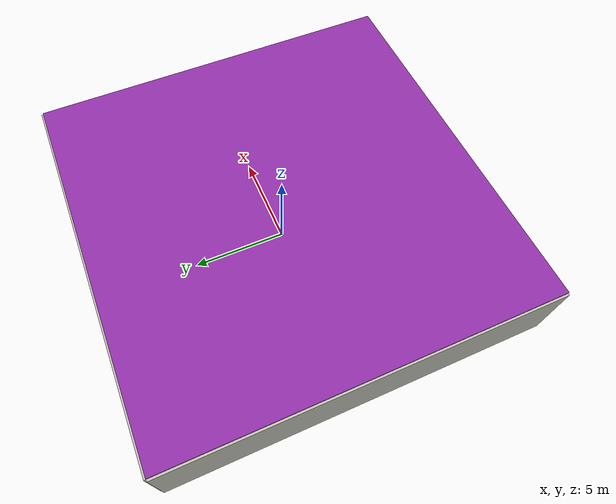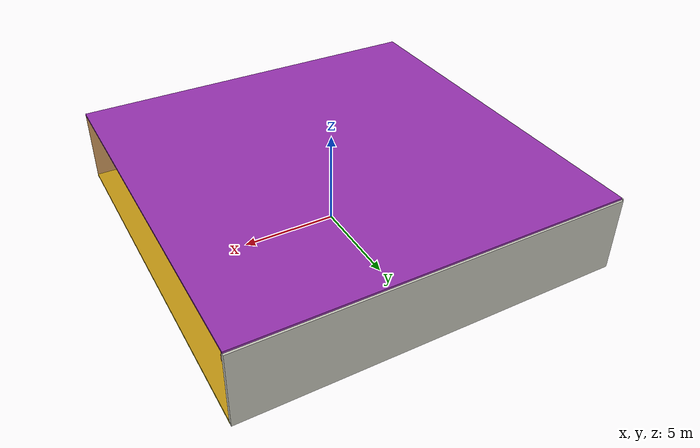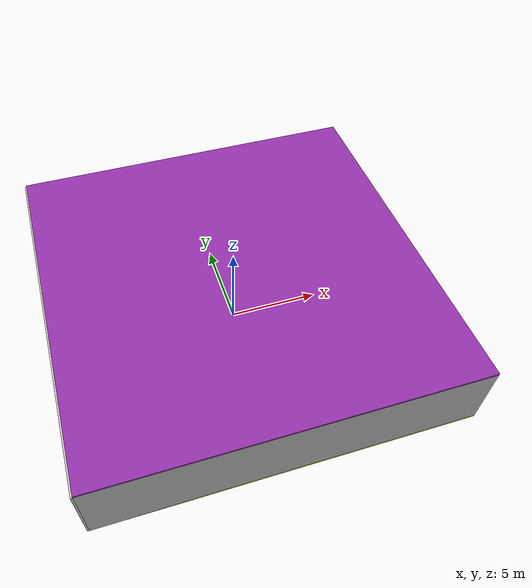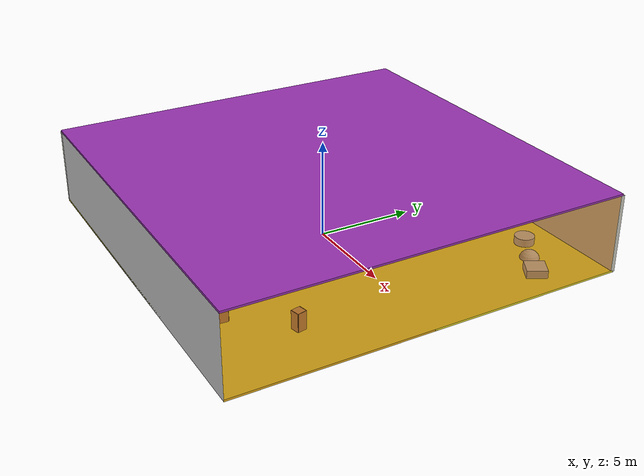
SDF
<sdf version="1.4">
 <world name="default">
  <physics type="ode">
   <max_step_size>0.001</max_step_size>
   <real_time_factor>1</real_time_factor>
   <real_time_update_rate>1000</real_time_update_rate>
   <gravity>0 0 -9.8</gravity>
  </physics>
  <scene><ambient>0.4 0.4 0.4 1</ambient><background>0.7 0.7 0.7 1</background><shadows>1</shadows></scene>
  <model name="Surrounding">
   <static>1</static>
   <link name="Ceiling">
    <collision name="Ceiling_Collision"><geometry><box><size>20 20 0.1</size></box></geometry></collision>
    <visual name="Ceiling_Visual">
     <geometry><box><size>20 20 0.1</size></box></geometry>
     <material>
      <script><uri>file://media/materials/scripts/gazebo.material</uri><name>Gazebo/Purple</name></script>
     </material>
    </visual>
    <pose>0 0 4.05 0 0 0</pose>
   </link>
   <link name="Wall_South">
    <collision name="Wall_South_Collision">
     <geometry><box><size>20 0 4</size></box></geometry>
     <pose>0 0 2 0 -0 0</pose>
    </collision>
    <visual name="Wall_South_Visual">
     <pose>0 0 2 0 -0 0</pose>
     <geometry><box><size>20 0 4</size></box></geometry>
     <material>
      <script><uri>file://media/materials/scripts/gazebo.material</uri><name>Gazebo/LightOff</name></script>
     </material>
    </visual>
    <velocity_decay><linear>0</linear><angular>0</angular></velocity_decay>
    <pose>0 -10 0 0 -0 0</pose>
   </link>
   <link name="Wall_East">
    <collision name="Wall_21_Collision">
     <geometry><box><size>20 0 4</size></box></geometry>
     <pose>0 0 2 0 -0 0</pose>
    </collision>
    <visual name="Wall_21_Visual">
     <pose>0 0 2 0 -0 0</pose>
     <geometry><box><size>20 0 4</size></box></geometry>
     <material>
      <script>
       <uri>file://media/materials/scripts/gazebo.material</uri>
       <name>Gazebo/OrangeTransparent</name>
      </script>
     </material>
    </visual>
    <velocity_decay><linear>0</linear><angular>0</angular></velocity_decay>
    <pose>10 0 0 0 -0 1.5708</pose>
   </link>
   <link name="Wall_North">
    <collision name="Wall_22_Collision">
     <geometry><box><size>20 0.2 4</size></box></geometry>
     <pose>0 0 2 0 -0 0</pose>
    </collision>
    <visual name="Wall_22_Visual">
     <pose>0 0 2 0 -0 0</pose>
     <geometry><box><size>20 0.2 4</size></box></geometry>
     <material>
      <script><uri>file://media/materials/scripts/gazebo.material</uri><name>Gazebo/PaintedWall</name></script>
     </material>
    </visual>
    <velocity_decay><linear>0</linear><angular>0</angular></velocity_decay>
    <pose>0 10 0 0 -0 0</pose>
   </link>
   <link name="Wall_West">
    <collision name="Wall_23_Collision">
     <geometry><box><size>20 0.2 4</size></box></geometry>
     <pose>0 0 2 0 -0 0</pose>
    </collision>
    <visual name="Wall_23_Visual">
     <pose>0 0 2 0 -0 0</pose>
     <geometry><box><size>20 0.2 4</size></box></geometry>
     <material>
      <script><uri>file://media/materials/scripts/gazebo.material</uri><name>Gazebo/PaintedWall</name></script>
     </material>
    </visual>
    <velocity_decay><linear>0</linear><angular>0</angular></velocity_decay>
    <pose>-10 0 0 0 0 -1.5708</pose>
   </link>
   <link name="Ground_link">
    <collision name="collision">
     <pose>0 0 .05 0 -0 0</pose>
     <geometry><box><size>20 20 0.1</size></box></geometry>
    </collision>
    <visual name="visual">
     <pose>0 0 .05 0 -0 0</pose>
     <geometry><box><size>20 20 0.1</size></box></geometry>
     <material>
      <script><uri>file://media/materials/scripts/gazebo.material</uri><name>Gazebo/Yellow</name></script>
     </material>
    </visual>
   </link>
   <static>1</static>
  </model>
  <spherical_coordinates>
   <surface_model>EARTH_WGS84</surface_model>
   <latitude_deg>0</latitude_deg>
   <longitude_deg>0</longitude_deg>
   <elevation>0</elevation>
   <heading_deg>0</heading_deg>
  </spherical_coordinates>
  <light name="lightball_0" type="diffuse">
   <diffuse>0.8 0.8 0.8 1</diffuse>
   <specular>0.2 0.2 0.2 1</specular>
   <attenuation>
    <range>100</range>
    <constant>0.7</constant>
    <linear>0.01</linear>
    <quadratic>0.001</quadratic>
   </attenuation>
   <direction>-0.5 0.1 -0.9</direction>
   <pose>0.333763061241 -3.48272583896 2.34735255595 0 0 0</pose>
  </light>
  <light name="lightball_1" type="diffuse">
   <diffuse>0.8 0.8 0.8 1</diffuse>
   <specular>0.2 0.2 0.2 1</specular>
   <attenuation>
    <range>100</range>
    <constant>0.7</constant>
    <linear>0.01</linear>
    <quadratic>0.001</quadratic>
   </attenuation>
   <direction>-0.5 0.1 -0.9</direction>
   <pose>-0.557156998255 -3.28126322131 0.939511255085 0 0 0</pose>
  </light>
  <light name="lightball_2" type="diffuse">
   <diffuse>0.8 0.8 0.8 1</diffuse>
   <specular>0.2 0.2 0.2 1</specular>
   <attenuation>
    <range>100</range>
    <constant>0.7</constant>
    <linear>0.01</linear>
    <quadratic>0.001</quadratic>
   </attenuation>
   <direction>-0.5 0.1 -0.9</direction>
   <pose>1.14487196342 -3.1599701472 3.79627050303 0 0 0</pose>
  </light>
  <light name="lightball_3" type="diffuse">
   <diffuse>0.8 0.8 0.8 1</diffuse>
   <specular>0.2 0.2 0.2 1</specular>
   <attenuation>
    <range>100</range>
    <constant>0.7</constant>
    <linear>0.01</linear>
    <quadratic>0.001</quadratic>
   </attenuation>
   <direction>-0.5 0.1 -0.9</direction>
   <pose>-2.11480269341 -9.61627451367 2.00042360984 0 0 0</pose>
  </light>
  <light name="lightball_4" type="diffuse">
   <diffuse>0.8 0.8 0.8 1</diffuse>
   <specular>0.2 0.2 0.2 1</specular>
   <attenuation>
    <range>100</range>
    <constant>0.7</constant>
    <linear>0.01</linear>
    <quadratic>0.001</quadratic>
   </attenuation>
   <direction>-0.5 0.1 -0.9</direction>
   <pose>8.72057352152 -6.18556693929 0.616872036116 0 0 0</pose>
  </light>
  <light name="lightball_5" type="diffuse">
   <diffuse>0.8 0.8 0.8 1</diffuse>
   <specular>0.2 0.2 0.2 1</specular>
   <attenuation>
    <range>100</range>
    <constant>0.7</constant>
    <linear>0.01</linear>
    <quadratic>0.001</quadratic>
   </attenuation>
   <direction>-0.5 0.1 -0.9</direction>
   <pose>-9.16171498308 4.83157999174 2.64870129603 0 0 0</pose>
  </light>
  <light name="lightball_6" type="diffuse">
   <diffuse>0.8 0.8 0.8 1</diffuse>
   <specular>0.2 0.2 0.2 1</specular>
   <attenuation>
    <range>100</range>
    <constant>0.7</constant>
    <linear>0.01</linear>
    <quadratic>0.001</quadratic>
   </attenuation>
   <direction>-0.5 0.1 -0.9</direction>
   <pose>3.04818027721 2.88286105007 1.92071685934 0 0 0</pose>
  </light>
  <light name="lightball_7" type="diffuse">
   <diffuse>0.8 0.8 0.8 1</diffuse>
   <specular>0.2 0.2 0.2 1</specular>
   <attenuation>
    <range>100</range>
    <constant>0.7</constant>
    <linear>0.01</linear>
    <quadratic>0.001</quadratic>
   </attenuation>
   <direction>-0.5 0.1 -0.9</direction>
   <pose>3.08264588712 3.75056941584 3.56698280351 0 0 0</pose>
  </light>
  <light name="lightball_8" type="diffuse">
   <diffuse>0.8 0.8 0.8 1</diffuse>
   <specular>0.2 0.2 0.2 1</specular>
   <attenuation>
    <range>100</range>
    <constant>0.7</constant>
    <linear>0.01</linear>
    <quadratic>0.001</quadratic>
   </attenuation>
   <direction>-0.5 0.1 -0.9</direction>
   <pose>6.91823405406 -0.169079947315 1.91948371007 0 0 0</pose>
  </light>
  <light name="lightball_9" type="diffuse">
   <diffuse>0.8 0.8 0.8 1</diffuse>
   <specular>0.2 0.2 0.2 1</specular>
   <attenuation>
    <range>100</range>
    <constant>0.7</constant>
    <linear>0.01</linear>
    <quadratic>0.001</quadratic>
   </attenuation>
   <direction>-0.5 0.1 -0.9</direction>
   <pose>-5.02133811625 -0.316748873498 2.00215127366 0 0 0</pose>
  </light>
  <light name="lightball_10" type="diffuse">
   <diffuse>0.8 0.8 0.8 1</diffuse>
   <specular>0.2 0.2 0.2 1</specular>
   <attenuation>
    <range>100</range>
    <constant>0.7</constant>
    <linear>0.01</linear>
    <quadratic>0.001</quadratic>
   </attenuation>
   <direction>-0.5 0.1 -0.9</direction>
   <pose>-0.867172992167 -2.14863307494 2.89776103621 0 0 0</pose>
  </light>
  <light name="lightball_11" type="diffuse">
   <diffuse>0.8 0.8 0.8 1</diffuse>
   <specular>0.2 0.2 0.2 1</specular>
   <attenuation>
    <range>100</range>
    <constant>0.7</constant>
    <linear>0.01</linear>
    <quadratic>0.001</quadratic>
   </attenuation>
   <direction>-0.5 0.1 -0.9</direction>
   <pose>0.759921460577 8.88664472315 3.57953957371 0 0 0</pose>
  </light>
  <light name="lightball_12" type="diffuse">
   <diffuse>0.8 0.8 0.8 1</diffuse>
   <specular>0.2 0.2 0.2 1</specular>
   <attenuation>
    <range>100</range>
    <constant>0.7</constant>
    <linear>0.01</linear>
    <quadratic>0.001</quadratic>
   </attenuation>
   <direction>-0.5 0.1 -0.9</direction>
   <pose>-5.19673042628 6.82945561686 3.14123340438 0 0 0</pose>
  </light>
  <light name="lightball_13" type="diffuse">
   <diffuse>0.8 0.8 0.8 1</diffuse>
   <specular>0.2 0.2 0.2 1</specular>
   <attenuation>
    <range>100</range>
    <constant>0.7</constant>
    <linear>0.01</linear>
    <quadratic>0.001</quadratic>
   </attenuation>
   <direction>-0.5 0.1 -0.9</direction>
   <pose>-9.18348358032 -8.08530983473 1.65254100385 0 0 0</pose>
  </light>
  <include><uri>model://cabinet</uri><pose>-3.794753865 -7.3618591316 0 0 0 0.441616427835</pose></include>
  <include><uri>model://cabinet</uri><pose>-3.74394623283 -2.28870969083 0 0 0 0.4617106975</pose></include>
  <include><uri>model://cabinet</uri><pose>-5.0595576427 1.42633466763 0 0 0 2.15695195275</pose></include>
  <include><uri>model://cabinet</uri><pose>-1.20405562543 -5.17510040689 0 0 0 2.84946681069</pose></include>
  <include>
   <uri>model://robocup_3Dsim_goal</uri>
   <pose>1.36025161896 -1.74572919379 0 0 0 1.50218860841</pose>
  </include>
  <include><uri>model://cabinet</uri><pose>4.85220423535 -7.74825246968 0 0 0 1.49450897328</pose></include>
  <include><uri>model://cabinet</uri><pose>7.08458849966 -5.16787552125 0 0 0 0.211545848202</pose></include>
  <include>
   <uri>model://textured_shapes</uri>
   <pose>7.12035550816 7.38616440259 0 0 0 1.05354964856</pose>
  </include>
 </world>
</sdf>

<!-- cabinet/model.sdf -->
<sdf version="1.5">
  <model name="cabinet">
    <static>true</static>
    <link name="cabinet_bottom_plate">
      <inertial>
        <pose>0 0 -1 0 0 0</pose>
        <inertia>
          <ixx>2.050000</ixx>
          <ixy>0</ixy>
          <ixz>0</ixz>
          <iyy>2.050000</iyy>
          <iyz>0</iyz>
          <izz>2.050000</izz>
        </inertia>
        <mass>25.000000</mass>
      </inertial>
      <collision name="cabinet_bottom_plate_geom">
        <pose>0 0 0.010000 0 0 0</pose>
        <geometry>
          <box>
            <size>0.450000 0.450000 0.020000</size>
          </box>
        </geometry>
      </collision>
      <visual name="cabinet_bottom_plate_geom_visual">
        <pose>0 0 0.010000 0 0 0</pose>
        <geometry>
          <box>
            <size>0.450000 0.450000 0.020000</size>
          </box>
        </geometry>
        <material>
          <script>
            <uri>model://media/materials/scripts/gazebo.material</uri>
            <name>Gazebo/Wood</name>
          </script>
        </material>
      </visual>
      <collision name="cabinet_bottom_plate_geom_cabinet_back_plate">
        <pose>0.235000 0 0.510000 0 0 0</pose>
        <geometry>
          <box>
            <size>0.020000 0.450000 1.020000</size>
          </box>
        </geometry>
      </collision>
      <visual name="cabinet_bottom_plate_geom_cabinet_back_plate_visual">
        <pose>0.235000 0 0.510000 0 0 0</pose>
        <geometry>
          <box>
            <size>0.020000 0.450000 1.020000</size>
          </box>
        </geometry>
        <material>
          <script>
            <uri>model://media/materials/scripts/gazebo.material</uri>
            <name>Gazebo/Wood</name>
          </script>
        </material>
      </visual>
      <collision name="cabinet_bottom_plate_geom_cabinet_left_plate">
        <pose>0 0.235000 0.510000 0 0 0</pose>
        <geometry>
          <box>
            <size>0.450000 0.020000 1.020000</size>
          </box>
        </geometry>
      </collision>
      <visual name="cabinet_bottom_plate_geom_cabinet_left_plate_visual">
        <pose>0 0.235000 0.510000 0 0 0</pose>
        <geometry>
          <box>
            <size>0.450000 0.020000 1.020000</size>
          </box>
        </geometry>
        <material>
          <script>
            <uri>model://media/materials/scripts/gazebo.material</uri>
            <name>Gazebo/Wood</name>
          </script>
        </material>
      </visual>
      <collision name="cabinet_bottom_plate_geom_cabinet_middle_plate">
        <pose>0 0 0.510000 0 0 0</pose>
        <geometry>
          <box>
            <size>0.450000 0.450000 0.020000</size>
          </box>
        </geometry>
      </collision>
      <visual name="cabinet_bottom_plate_geom_cabinet_middle_plate_visual">
        <pose>0 0 0.510000 0 0 0</pose>
        <geometry>
          <box>
            <size>0.450000 0.450000 0.020000</size>
          </box>
        </geometry>
        <material>
          <script>
            <uri>model://media/materials/scripts/gazebo.material</uri>
            <name>Gazebo/Wood</name>
          </script>
        </material>
      </visual>
      <collision name="cabinet_bottom_plate_geom_cabinet_right_plate">
        <pose>0 -0.235000 0.510000 0 0 0</pose>
        <geometry>
          <box>
            <size>0.450000 0.020000 1.020000</size>
          </box>
        </geometry>
      </collision>
      <visual name="cabinet_bottom_plate_geom_cabinet_right_plate_visual">
        <pose>0 -0.235000 0.510000 0 0 0</pose>
        <geometry>
          <box>
            <size>0.450000 0.020000 1.020000</size>
          </box>
        </geometry>
        <material>
          <script>
            <uri>model://media/materials/scripts/gazebo.material</uri>
            <name>Gazebo/Wood</name>
          </script>
        </material>
      </visual>
      <collision name="cabinet_bottom_plate_geom_cabinet_top_plate">
        <pose>0 0 1.010000 0 0 0</pose>
        <geometry>
          <box>
            <size>0.450000 0.450000 0.020000</size>
          </box>
        </geometry>
      </collision>
      <visual name="cabinet_bottom_plate_geom_cabinet_top_plate_visual">
        <pose>0 0 1.010000 0 0 0</pose>
        <geometry>
          <box>
            <size>0.450000 0.450000 0.020000</size>
          </box>
        </geometry>
        <material>
          <script>
            <uri>model://media/materials/scripts/gazebo.material</uri>
            <name>Gazebo/Wood</name>
          </script>
        </material>
      </visual>
    </link>
  </model>
</sdf>

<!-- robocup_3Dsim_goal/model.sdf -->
<sdf version="1.5">
  <model name="robocup_3d_goal">
    <static>true</static>
    <link name="left_post">
      <pose>0 1.05 0.45 0 0 0</pose>
      <collision name="collision">
        <geometry>
          <cylinder>
            <radius>0.05</radius>
            <length>0.9</length>
          </cylinder>
        </geometry>
      </collision>
      <visual name="visual">
        <geometry>
          <cylinder>
            <radius>0.05</radius>
            <length>0.9</length>
          </cylinder>
        </geometry>
        <material>
          <script>
            <uri>file://media/materials/scripts/gazebo.material</uri>
            <name>Gazebo/ZincYellow</name>
          </script>
        </material>
      </visual>
    </link>
    <link name="left_support_horiz_lower">
      <pose>0.30 1.05 0.01 0 0 0</pose>
      <collision name="collision">
        <geometry>
          <box>
            <size>0.50 0.02 0.02</size>
          </box>
        </geometry>
      </collision>
      <visual name="visual">
        <geometry>
          <box>
            <size>0.50 0.02 0.02</size>
          </box>
        </geometry>
        <material>
          <script>
            <uri>file://media/materials/scripts/gazebo.material</uri>
            <name>Gazebo/White</name>
          </script>
        </material>
      </visual>
    </link>
    <link name="left_support_horiz_upper">
      <pose>0.30 1.05 0.79 0 0 0</pose>
      <collision name="collision">
        <geometry>
          <box>
            <size>0.50 0.02 0.02</size>
          </box>
        </geometry>
      </collision>
      <visual name="visual">
        <geometry>
          <box>
            <size>0.50 0.02 0.02</size>
          </box>
        </geometry>
        <material>
          <script>
            <uri>file://media/materials/scripts/gazebo.material</uri>
            <name>Gazebo/White</name>
          </script>
        </material>
      </visual>
    </link>
    <link name="left_support_vertical">
      <pose>0.56 1.05 0.4 0 1.5708 0</pose>
      <collision name="collision">
        <geometry>
          <box>
            <size>0.80 0.02 0.02</size>
          </box>
        </geometry>
      </collision>
      <visual name="visual">
        <geometry>
          <box>
            <size>0.80 0.02 0.02</size>
          </box>
        </geometry>
        <material>
          <script>
            <uri>file://media/materials/scripts/gazebo.material</uri>
            <name>Gazebo/White</name>
          </script>
        </material>
      </visual>
    </link>
    <link name="right_support_horiz_lower">
      <pose>0.30 -1.05 0.01 0 0 0</pose>
      <collision name="collision">
        <geometry>
          <box>
            <size>0.50 0.02 0.02</size>
          </box>
        </geometry>
      </collision>
      <visual name="visual">
        <geometry>
          <box>
            <size>0.50 0.02 0.02</size>
          </box>
        </geometry>
        <material>
          <script>
            <uri>file://media/materials/scripts/gazebo.material</uri>
            <name>Gazebo/White</name>
          </script>
        </material>
      </visual>
    </link>
    <link name="right_support_horiz_upper">
      <pose>0.30 -1.05 0.79 0 0 0</pose>
      <collision name="collision">
        <geometry>
          <box>
            <size>0.50 0.02 0.02</size>
          </box>
        </geometry>
      </collision>
      <visual name="visual">
        <geometry>
          <box>
            <size>0.50 0.02 0.02</size>
          </box>
        </geometry>
        <material>
          <script>
            <uri>file://media/materials/scripts/gazebo.material</uri>
            <name>Gazebo/White</name>
          </script>
        </material>
      </visual>
    </link>
    <link name="right_support_vertical">
      <pose>0.56 -1.05 0.4 0 1.5708 0</pose>
      <collision name="collision">
        <geometry>
          <box>
            <size>0.80 0.02 0.02</size>
          </box>
        </geometry>
      </collision>
      <visual name="visual">
        <geometry>
          <box>
            <size>0.80 0.02 0.02</size>
          </box>
        </geometry>
        <material>
          <script>
            <uri>file://media/materials/scripts/gazebo.material</uri>
            <name>Gazebo/White</name>
          </script>
        </material>
      </visual>
    </link>
    <link name="center_support_horiz_lower">
      <pose>0.56 0 0.01 0 1.5708 0</pose>
      <collision name="collision">
        <geometry>
          <box>
            <size>0.02 2.08 0.02</size>
          </box>
        </geometry>
      </collision>
      <visual name="visual">
        <geometry>
          <box>
            <size>0.02 2.08 0.02</size>
          </box>
        </geometry>
        <material>
          <script>
            <uri>file://media/materials/scripts/gazebo.material</uri>
            <name>Gazebo/White</name>
          </script>
        </material>
      </visual>
    </link>
    <link name="center_support_horiz_upper">
      <pose>0.56 0 0.79 0 1.5708 0</pose>
      <collision name="collision">
        <geometry>
          <box>
            <size>0.02 2.08 0.02</size>
          </box>
        </geometry>
      </collision>
      <visual name="visual">
        <geometry>
          <box>
            <size>0.02 2.08 0.02</size>
          </box>
        </geometry>
        <material>
          <script>
            <uri>file://media/materials/scripts/gazebo.material</uri>
            <name>Gazebo/White</name>
          </script>
        </material>
      </visual>
    </link>
    <link name="right_post">
      <pose>0 -1.05 0.45 0 0 0</pose>
      <collision name="collision">
        <geometry>
          <cylinder>
            <radius>0.05</radius>
            <length>0.9</length>
          </cylinder>
        </geometry>
      </collision>
      <visual name="visual">
        <geometry>
          <cylinder>
            <radius>0.05</radius>
            <length>0.9</length>
          </cylinder>
        </geometry>
        <material>
          <script>
            <uri>file://media/materials/scripts/gazebo.material</uri>
            <name>Gazebo/ZincYellow</name>
          </script>
        </material>
      </visual>
    </link>
    <link name="crossbar">
      <pose>0 0 0.85 1.57 1.57 0</pose>
      <collision name="collision">
        <geometry>
          <cylinder>
            <radius>0.05</radius>
            <length>2.0</length>
          </cylinder>
        </geometry>
      </collision>
      <visual name="visual">
        <geometry>
          <cylinder>
            <radius>0.05</radius>
            <length>2.0</length>
          </cylinder>
        </geometry>
        <material>
          <script>
            <uri>file://media/materials/scripts/gazebo.material</uri>
            <name>Gazebo/ZincYellow</name>
          </script>
        </material>
      </visual>
    </link>
    <link name="center_net">
      <pose>0.56 0 0.40 0 0 0</pose>
      <collision name="collision">
        <geometry>
          <box>
            <size>0.01 2.1 0.80</size>
          </box>
        </geometry>
      </collision>
      <visual name="visual">
        <geometry>
          <box>
            <size>0.01 2.1 0.80</size>
          </box>
        </geometry>
        <material>
          <script>
            <uri>model://../model_source/models/robocup09_spl_field/materials/scripts/</uri>
            <uri>model://../model_source/models/robocup09_spl_field/materials/textures/</uri>
            <name>RoboCup/Net</name>
          </script>
        </material>
      </visual>
    </link>
    <link name="left_net">
      <pose>0.30 1.05 0.40 0 0 0</pose>
      <collision name="collision">
        <geometry>
          <box>
            <size>0.50 0.01 0.76</size>
          </box>
        </geometry>
      </collision>
      <visual name="visual">
        <geometry>
          <box>
            <size>0.50 0.01 0.76</size>
          </box>
        </geometry>
        <material>
          <script>
            <uri>model://../model_source/models/robocup09_spl_field/materials/scripts/</uri>
            <uri>model://../model_source/models/robocup09_spl_field/materials/textures/</uri>
            <name>RoboCup/Net</name>
          </script>
        </material>
      </visual>
    </link>
    <link name="right_net">
      <pose>0.30 -1.05 0.40 0 0 0</pose>
      <collision name="collision">
        <geometry>
          <box>
            <size>0.50 0.01 0.76</size>
          </box>
        </geometry>
      </collision>
      <visual name="visual">
        <geometry>
          <box>
            <size>0.50 0.01 0.76</size>
          </box>
        </geometry>
        <material>
          <script>
            <uri>model://../model_source/models/robocup09_spl_field/materials/scripts/</uri>
            <uri>model://../model_source/models/robocup09_spl_field/materials/textures/</uri>
            <name>RoboCup/Net</name>
          </script>
        </material>
      </visual>
    </link>
  </model>
</sdf>

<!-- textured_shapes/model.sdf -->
<sdf version="1.6">
  <model name="textured_shapes">
    <pose>0 0 0.5 0 0 0</pose>
    <link name="box">
      <pose>0 -1.5 0 0 0 0</pose>
      <collision name="collision">
        <geometry>
          <box>
            <size>1 1 1</size>
          </box>
        </geometry>
      </collision>
      <visual name="visual">
        <geometry>
          <box>
            <size>1 1 1</size>
          </box>
        </geometry>
        <material>
          <script>
            <uri>model://../model_source/models/textured_shapes/materials/scripts</uri>
            <uri>model://../model_source/models/textured_shapes/materials/textures</uri>
            <name>TexturedShape/Squares</name>
          </script>
        </material>
      </visual>
    </link>
    <link name="sphere">
      <collision name="collision">
        <geometry>
          <sphere>
            <radius>0.5</radius>
          </sphere>
        </geometry>
      </collision>
      <visual name="visual">
        <geometry>
          <sphere>
            <radius>0.5</radius>
          </sphere>
        </geometry>
        <material>
          <script>
            <uri>model://../model_source/models/textured_shapes/materials/scripts</uri>
            <uri>model://../model_source/models/textured_shapes/materials/textures</uri>
            <name>TexturedShape/Squares</name>
          </script>
        </material>
      </visual>
    </link>
    <link name="cylinder">
      <pose>0 1.5 0 0 0 0</pose>
      <collision name="collision">
        <geometry>
          <cylinder>
            <radius>0.5</radius>
            <length>1</length>
          </cylinder>
        </geometry>
      </collision>
      <visual name="visual">
        <geometry>
          <cylinder>
            <radius>0.5</radius>
            <length>1</length>
          </cylinder>
        </geometry>
        <material>
          <script>
            <uri>model://../model_source/models/textured_shapes/materials/scripts</uri>
            <uri>model://../model_source/models/textured_shapes/materials/textures</uri>
            <name>TexturedShape/Squares</name>
          </script>
        </material>
      </visual>
    </link>
  </model>
</sdf>
